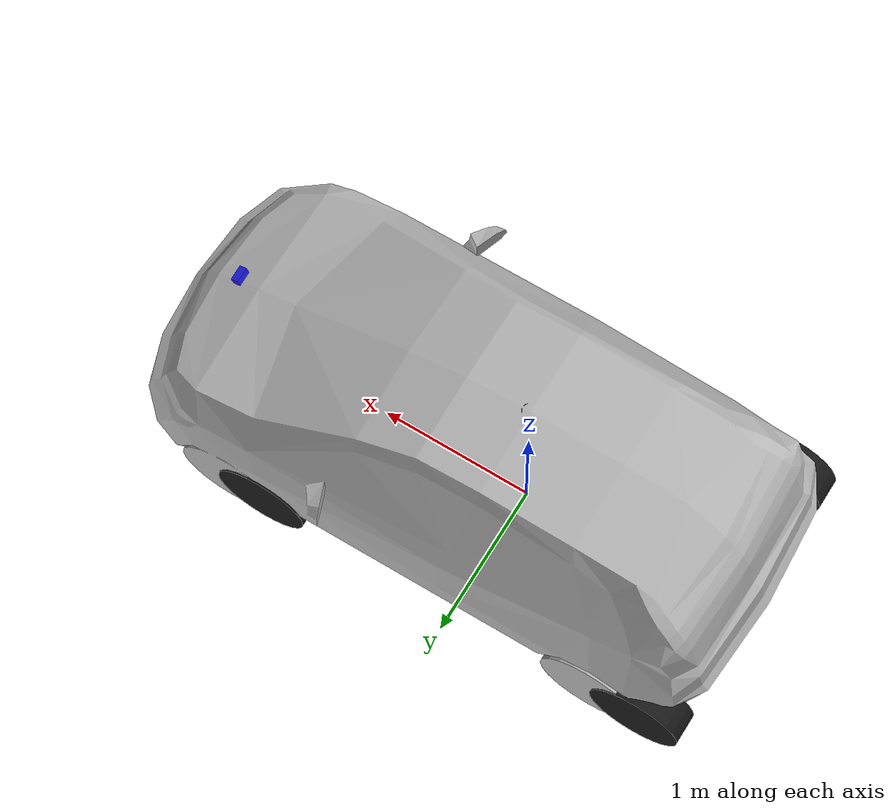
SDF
<?xml version="1.0"?>
<sdf version="1.6">
  <model name="ego_hatchback">
    <pose>0 0 0 0 0 0</pose>

    <!-- ============== CHASSIS ============== -->
    <link name="chassis">
      <pose>0 0 0 0 0 0</pose>
      <inertial>
        <mass>1200</mass>
        <pose>0 0 0.4 0 0 0</pose>
        <inertia>
          <ixx>500</ixx><iyy>1500</iyy><izz>1800</izz>
          <ixy>0</ixy><ixz>0</ixz><iyz>0</iyz>
        </inertia>
      </inertial>
      <collision name="chassis_collision">
        <pose>0 0 0.9 0 0 0</pose>
        <geometry>
          <box><size>4.2 1.8 1.2</size></box>
        </geometry>
      </collision>
      <visual name="chassis_visual">
        <pose>0 0 0 0 0 1.57079632679</pose>
        <geometry>
          <mesh>
            <scale>0.0254 0.0254 0.0254</scale>
            <uri>model://hatchback/meshes/hatchback.obj</uri>
          </mesh>
        </geometry>
      </visual>
    </link>

    <!-- ============== WHEELS (link는 안 눕힘, visual만 회전) ============== -->
    <!-- Front wheels: low mu2 (lateral) so the car can rotate in place.
         Passive (non-driven) wheels act like casters for diff-drive. -->
    <link name="wheel_fl">
      <pose>1.3 0.85 0.3 0 0 0</pose>
      <inertial>
        <mass>15</mass>
        <inertia><ixx>0.5</ixx><iyy>0.5</iyy><izz>0.5</izz><ixy>0</ixy><ixz>0</ixz><iyz>0</iyz></inertia>
      </inertial>
      <collision name="c">
        <pose>0 0 0 1.5708 0 0</pose>
        <geometry><cylinder><radius>0.3</radius><length>0.2</length></cylinder></geometry>
        <surface><friction><ode><mu>0.01</mu><mu2>0.01</mu2></ode></friction></surface>
      </collision>
      <visual name="v">
        <pose>0 0 0 1.5708 0 0</pose>
        <geometry><cylinder><radius>0.3</radius><length>0.2</length></cylinder></geometry>
        <material><ambient>0.1 0.1 0.1 1</ambient><diffuse>0.1 0.1 0.1 1</diffuse></material>
      </visual>
    </link>

    <link name="wheel_fr">
      <pose>1.3 -0.85 0.3 0 0 0</pose>
      <inertial>
        <mass>15</mass>
        <inertia><ixx>0.5</ixx><iyy>0.5</iyy><izz>0.5</izz><ixy>0</ixy><ixz>0</ixz><iyz>0</iyz></inertia>
      </inertial>
      <collision name="c">
        <pose>0 0 0 1.5708 0 0</pose>
        <geometry><cylinder><radius>0.3</radius><length>0.2</length></cylinder></geometry>
        <surface><friction><ode><mu>0.01</mu><mu2>0.01</mu2></ode></friction></surface>
      </collision>
      <visual name="v">
        <pose>0 0 0 1.5708 0 0</pose>
        <geometry><cylinder><radius>0.3</radius><length>0.2</length></cylinder></geometry>
        <material><ambient>0.1 0.1 0.1 1</ambient><diffuse>0.1 0.1 0.1 1</diffuse></material>
      </visual>
    </link>

    <link name="wheel_rl">
      <pose>-1.3 0.85 0.3 0 0 0</pose>
      <inertial>
        <mass>15</mass>
        <inertia><ixx>0.5</ixx><iyy>0.5</iyy><izz>0.5</izz><ixy>0</ixy><ixz>0</ixz><iyz>0</iyz></inertia>
      </inertial>
      <collision name="c">
        <pose>0 0 0 1.5708 0 0</pose>
        <geometry><cylinder><radius>0.3</radius><length>0.2</length></cylinder></geometry>
        <surface><friction><ode><mu>1.5</mu><mu2>1.5</mu2></ode></friction></surface>
      </collision>
      <visual name="v">
        <pose>0 0 0 1.5708 0 0</pose>
        <geometry><cylinder><radius>0.3</radius><length>0.2</length></cylinder></geometry>
        <material><ambient>0.1 0.1 0.1 1</ambient><diffuse>0.1 0.1 0.1 1</diffuse></material>
      </visual>
    </link>

    <link name="wheel_rr">
      <pose>-1.3 -0.85 0.3 0 0 0</pose>
      <inertial>
        <mass>15</mass>
        <inertia><ixx>0.5</ixx><iyy>0.5</iyy><izz>0.5</izz><ixy>0</ixy><ixz>0</ixz><iyz>0</iyz></inertia>
      </inertial>
      <collision name="c">
        <pose>0 0 0 1.5708 0 0</pose>
        <geometry><cylinder><radius>0.3</radius><length>0.2</length></cylinder></geometry>
        <surface><friction><ode><mu>1.5</mu><mu2>1.5</mu2></ode></friction></surface>
      </collision>
      <visual name="v">
        <pose>0 0 0 1.5708 0 0</pose>
        <geometry><cylinder><radius>0.3</radius><length>0.2</length></cylinder></geometry>
        <material><ambient>0.1 0.1 0.1 1</ambient><diffuse>0.1 0.1 0.1 1</diffuse></material>
      </visual>
    </link>

    <!-- ============== JOINTS (axis: Y = 좌우 방향) ============== -->
    <joint name="wheel_fl_joint" type="revolute">
      <parent>chassis</parent><child>wheel_fl</child>
      <axis>
        <xyz>0 1 0</xyz>
        <limit><lower>-1e16</lower><upper>1e16</upper></limit>
        <dynamics><damping>0.01</damping></dynamics>
      </axis>
    </joint>
    <joint name="wheel_fr_joint" type="revolute">
      <parent>chassis</parent><child>wheel_fr</child>
      <axis>
        <xyz>0 1 0</xyz>
        <limit><lower>-1e16</lower><upper>1e16</upper></limit>
        <dynamics><damping>0.01</damping></dynamics>
      </axis>
    </joint>
    <joint name="wheel_rl_joint" type="revolute">
      <parent>chassis</parent><child>wheel_rl</child>
      <axis>
        <xyz>0 1 0</xyz>
        <limit><lower>-1e16</lower><upper>1e16</upper></limit>
        <dynamics><damping>0.01</damping></dynamics>
      </axis>
    </joint>
    <joint name="wheel_rr_joint" type="revolute">
      <parent>chassis</parent><child>wheel_rr</child>
      <axis>
        <xyz>0 1 0</xyz>
        <limit><lower>-1e16</lower><upper>1e16</upper></limit>
        <dynamics><damping>0.01</damping></dynamics>
      </axis>
    </joint>

    <!-- ============== LiDAR ============== -->
    <link name="lidar_link">
      <pose>0 0 1.5 0 0 0</pose>
      <inertial>
        <mass>0.1</mass>
        <inertia><ixx>0.001</ixx><iyy>0.001</iyy><izz>0.001</izz><ixy>0</ixy><ixz>0</ixz><iyz>0</iyz></inertia>
      </inertial>
      <visual name="v">
        <geometry><cylinder><radius>0.05</radius><length>0.1</length></cylinder></geometry>
        <material><ambient>0.2 0.2 0.2 1</ambient></material>
      </visual>
      <sensor name="lidar" type="ray">
        <always_on>true</always_on>
        <visualize>true</visualize>
        <update_rate>10</update_rate>
        <ray>
          <scan><horizontal>
            <samples>360</samples>
            <resolution>1</resolution>
            <min_angle>-3.14159</min_angle>
            <max_angle>3.14159</max_angle>
          </horizontal></scan>
          <range>
            <min>0.3</min>
            <max>12.0</max>
            <resolution>0.02</resolution>
          </range>
          <noise><type>gaussian</type><mean>0.0</mean><stddev>0.01</stddev></noise>
        </ray>
        <plugin name="lidar_plugin" filename="libgazebo_ros_ray_sensor.so">
          <ros>
            <namespace>/ego</namespace>
            <remapping>~/out:=scan</remapping>
          </ros>
          <output_type>sensor_msgs/LaserScan</output_type>
          <frame_name>lidar_link</frame_name>
        </plugin>
      </sensor>
    </link>

    <joint name="lidar_joint" type="fixed">
      <parent>chassis</parent><child>lidar_link</child>
    </joint>

    <!-- ============== FRONT CAMERA ============== -->
    <!-- Mounted at front of chassis, 1m height, tilted 20° down to capture ground markers -->
    <link name="camera_link">
      <pose>2.0 0 1.0 0 0.35 0</pose>
      <inertial>
        <mass>0.1</mass>
        <inertia><ixx>0.001</ixx><iyy>0.001</iyy><izz>0.001</izz><ixy>0</ixy><ixz>0</ixz><iyz>0</iyz></inertia>
      </inertial>
      <visual name="v">
        <geometry><box><size>0.05 0.1 0.05</size></box></geometry>
        <material><ambient>0.1 0.1 0.9 1</ambient><diffuse>0.1 0.1 0.9 1</diffuse></material>
      </visual>
      <sensor name="camera" type="camera">
        <always_on>true</always_on>
        <update_rate>10</update_rate>
        <camera>
          <horizontal_fov>1.3962634</horizontal_fov>
          <image>
            <width>640</width>
            <height>480</height>
            <format>R8G8B8</format>
          </image>
          <clip><near>0.1</near><far>30.0</far></clip>
          <noise><type>gaussian</type><mean>0.0</mean><stddev>0.007</stddev></noise>
        </camera>
        <plugin name="camera_plugin" filename="libgazebo_ros_camera.so">
          <ros>
            <namespace>/ego</namespace>
            <remapping>image_raw:=camera/image_raw</remapping>
            <remapping>camera_info:=camera/camera_info</remapping>
          </ros>
          <frame_name>camera_link</frame_name>
        </plugin>
      </sensor>
    </link>

    <joint name="camera_joint" type="fixed">
      <parent>chassis</parent><child>camera_link</child>
    </joint>

    <!-- ============== IMU ============== -->
    <link name="imu_link">
      <pose>0 0 0.5 0 0 0</pose>
      <inertial>
        <mass>0.01</mass>
        <inertia><ixx>1e-6</ixx><iyy>1e-6</iyy><izz>1e-6</izz><ixy>0</ixy><ixz>0</ixz><iyz>0</iyz></inertia>
      </inertial>
      <sensor name="imu" type="imu">
        <always_on>true</always_on>
        <update_rate>50</update_rate>
        <plugin name="imu_plugin" filename="libgazebo_ros_imu_sensor.so">
          <ros>
            <namespace>/ego</namespace>
            <remapping>~/out:=imu</remapping>
          </ros>
          <frame_name>imu_link</frame_name>
        </plugin>
      </sensor>
    </link>

    <joint name="imu_joint" type="fixed">
      <parent>chassis</parent><child>imu_link</child>
    </joint>

    <!-- ============== DIFF DRIVE (뒷바퀴 구동) ============== -->
    <plugin name="diff_drive" filename="libgazebo_ros_diff_drive.so">
      <ros><namespace>/ego</namespace></ros>

      <left_joint>wheel_rl_joint</left_joint>
      <right_joint>wheel_rr_joint</right_joint>

      <wheel_separation>1.7</wheel_separation>
      <wheel_diameter>0.6</wheel_diameter>

      <max_wheel_torque>200</max_wheel_torque>
      <max_wheel_acceleration>3.0</max_wheel_acceleration>

      <command_topic>cmd_vel</command_topic>
      <publish_odom>true</publish_odom>
      <publish_odom_tf>true</publish_odom_tf>
      <publish_wheel_tf>false</publish_wheel_tf>

      <odometry_topic>odom</odometry_topic>
      <odometry_frame>odom</odometry_frame>
      <robot_base_frame>chassis</robot_base_frame>
    </plugin>
  </model>
</sdf>
